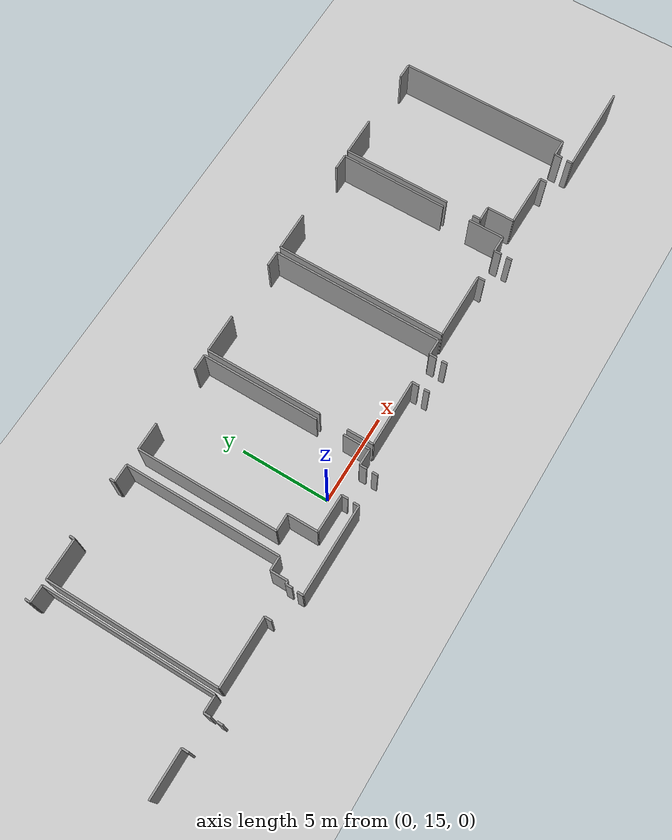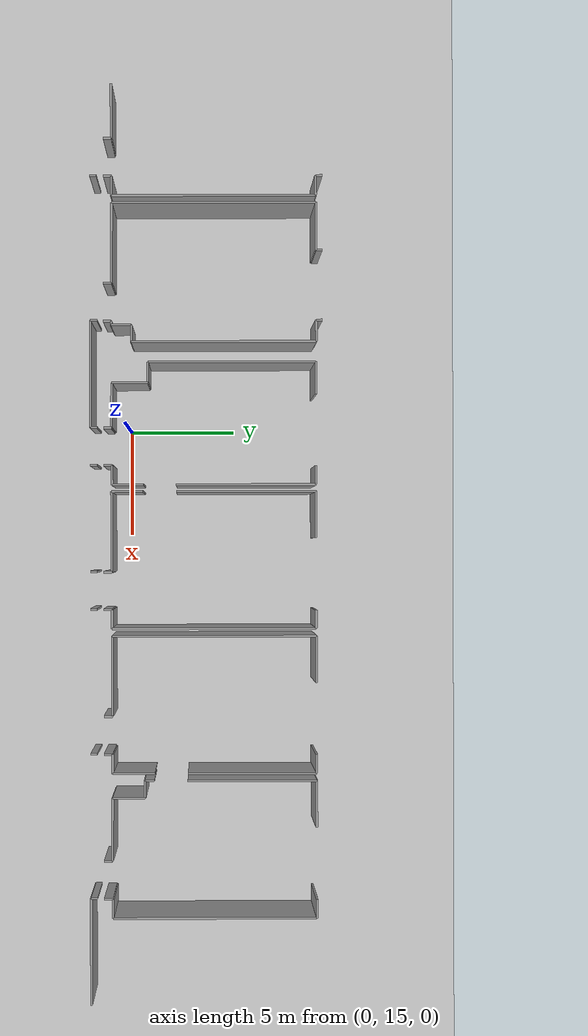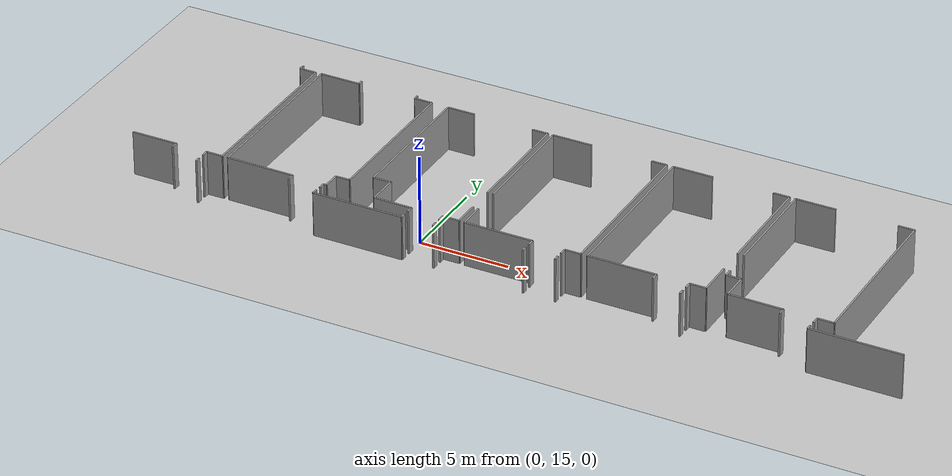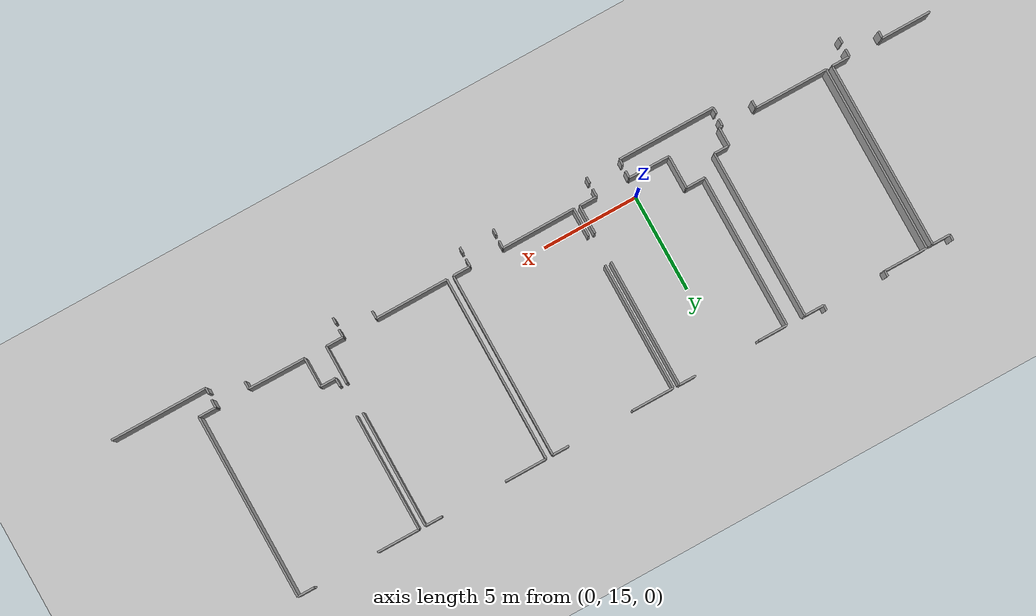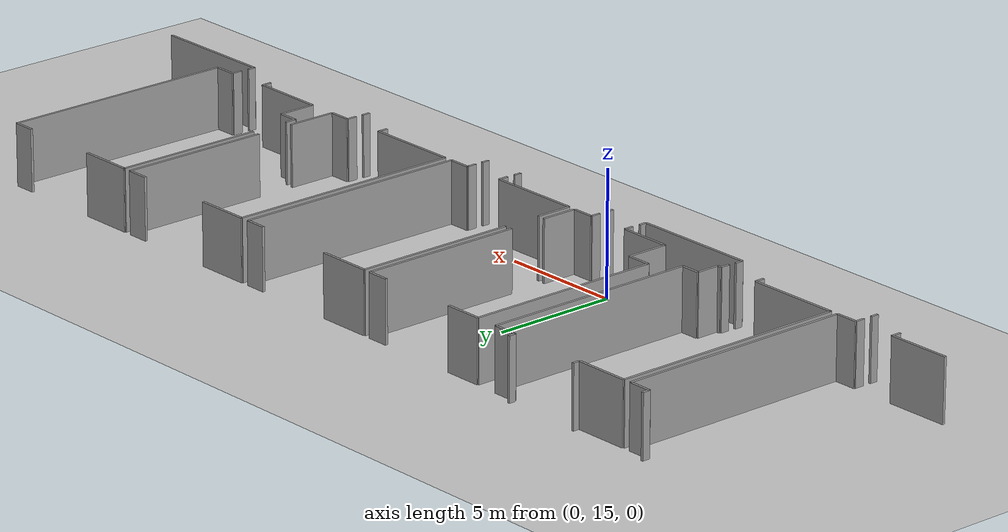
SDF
<sdf version="1.6">
 <world name="default">
  <model name="ground_plane">
   <static>1</static>
   <link name="link">
    <collision name="collision">
     <geometry><plane><normal>0 0 1</normal><size>100 100</size></plane></geometry>
     <surface><friction><ode><mu>100</mu><mu2>50</mu2></ode></friction></surface>
    </collision>
    <visual name="visual">
     <cast_shadows>0</cast_shadows>
     <geometry><plane><normal>0 0 1</normal><size>100 100</size></plane></geometry>
     <material>
      <script><uri>file://media/materials/scripts/gazebo.material</uri><name>Gazebo/Grey</name></script>
     </material>
    </visual>
   </link>
  </model>
  <model name="0510032197_A_40_1_105">
   <static>1</static>
   <link name="Wall_83">
    <collision name="Wall_83_Collision">
     <geometry><box><size>0.312917042667 0.1 2.5</size></box></geometry>
     <pose>0.156458521334 0 1.25 0 0 0</pose>
    </collision>
    <visual name="Wall_83_Visual">
     <pose>0.156458521334 0 1.25 0 0 0</pose>
     <geometry><box><size>0.312917042667 0.1 2.5</size></box></geometry>
     <material>
      <script><uri>file://media/materials/scripts/gazebo.material</uri><name>Gazebo/Grey</name></script>
      <ambient>1 1 1 1</ambient>
     </material>
    </visual>
    <pose>53.5810063676 -0.00724462690171 0 0 0 -1.57079632679</pose>
   </link>
   <link name="Wall_84">
    <collision name="Wall_84_Collision">
     <geometry><box><size>0.930743908794 0.1 2.5</size></box></geometry>
     <pose>0.465371954397 0 1.25 0 0 0</pose>
    </collision>
    <visual name="Wall_84_Visual">
     <pose>0.465371954397 0 1.25 0 0 0</pose>
     <geometry><box><size>0.930743908794 0.1 2.5</size></box></geometry>
     <material>
      <script><uri>file://media/materials/scripts/gazebo.material</uri><name>Gazebo/Grey</name></script>
      <ambient>1 1 1 1</ambient>
     </material>
    </visual>
    <pose>53.5810063676 -0.320161669569 0 0 0 0.0</pose>
   </link>
   <link name="Wall_85">
    <collision name="Wall_85_Collision">
     <geometry><box><size>9.64882624334 0.1 2.5</size></box></geometry>
     <pose>4.82441312167 0 1.25 0 0 0</pose>
    </collision>
    <visual name="Wall_85_Visual">
     <pose>4.82441312167 0 1.25 0 0 0</pose>
     <geometry><box><size>9.64882624334 0.1 2.5</size></box></geometry>
     <material>
      <script><uri>file://media/materials/scripts/gazebo.material</uri><name>Gazebo/Grey</name></script>
      <ambient>1 1 1 1</ambient>
     </material>
    </visual>
    <pose>54.5117502764 -0.320161669569 0 0 0 -1.57079632679</pose>
   </link>
   <link name="Wall_86">
    <collision name="Wall_86_Collision">
     <geometry><box><size>0.927312243419 0.1 2.5</size></box></geometry>
     <pose>0.46365612171 0 1.25 0 0 0</pose>
    </collision>
    <visual name="Wall_86_Visual">
     <pose>0.46365612171 0 1.25 0 0 0</pose>
     <geometry><box><size>0.927312243419 0.1 2.5</size></box></geometry>
     <material>
      <script><uri>file://media/materials/scripts/gazebo.material</uri><name>Gazebo/Grey</name></script>
      <ambient>1 1 1 1</ambient>
     </material>
    </visual>
    <pose>54.5117502764 -9.96898791291 0 0 0 3.14159265359</pose>
   </link>
   <link name="Wall_87">
    <collision name="Wall_87_Collision">
     <geometry><box><size>0.379135474523 0.1 2.5</size></box></geometry>
     <pose>0.189567737262 0 1.25 0 0 0</pose>
    </collision>
    <visual name="Wall_87_Visual">
     <pose>0.189567737262 0 1.25 0 0 0</pose>
     <geometry><box><size>0.379135474523 0.1 2.5</size></box></geometry>
     <material>
      <script><uri>file://media/materials/scripts/gazebo.material</uri><name>Gazebo/Grey</name></script>
      <ambient>1 1 1 1</ambient>
     </material>
    </visual>
    <pose>53.584438033 -9.96898791291 0 0 0 -1.57079632679</pose>
   </link>
   <link name="Wall_88">
    <collision name="Wall_88_Collision">
     <geometry><box><size>0.372780538644 0.1 2.5</size></box></geometry>
     <pose>0.186390269322 0 1.25 0 0 0</pose>
    </collision>
    <visual name="Wall_88_Visual">
     <pose>0.186390269322 0 1.25 0 0 0</pose>
     <geometry><box><size>0.372780538644 0.1 2.5</size></box></geometry>
     <material>
      <script><uri>file://media/materials/scripts/gazebo.material</uri><name>Gazebo/Grey</name></script>
      <ambient>1 1 1 1</ambient>
     </material>
    </visual>
    <pose>51.8025140126 -10.3481233874 0 0 0 1.57079632679</pose>
   </link>
   <link name="Wall_89">
    <collision name="Wall_89_Collision">
     <geometry><box><size>2.58048954794 0.1 2.5</size></box></geometry>
     <pose>1.29024477397 0 1.25 0 0 0</pose>
    </collision>
    <visual name="Wall_89_Visual">
     <pose>1.29024477397 0 1.25 0 0 0</pose>
     <geometry><box><size>2.58048954794 0.1 2.5</size></box></geometry>
     <material>
      <script><uri>file://media/materials/scripts/gazebo.material</uri><name>Gazebo/Grey</name></script>
      <ambient>1 1 1 1</ambient>
     </material>
    </visual>
    <pose>51.8025140126 -9.97534284879 0 0 0 -3.13977026483</pose>
   </link>
   <link name="Wall_90">
    <collision name="Wall_90_Collision">
     <geometry><box><size>9.65848574588 0.1 2.5</size></box></geometry>
     <pose>4.82924287294 0 1.25 0 0 0</pose>
    </collision>
    <visual name="Wall_90_Visual">
     <pose>4.82924287294 0 1.25 0 0 0</pose>
     <geometry><box><size>9.65848574588 0.1 2.5</size></box></geometry>
     <material>
      <script><uri>file://media/materials/scripts/gazebo.material</uri><name>Gazebo/Grey</name></script>
      <ambient>1 1 1 1</ambient>
     </material>
    </visual>
    <pose>54.8403004614 -9.96326847062 0 0 0 1.57079632679</pose>
   </link>
   <link name="Wall_91">
    <collision name="Wall_91_Collision">
     <geometry><box><size>2.25346026259 0.1 2.5</size></box></geometry>
     <pose>1.12673013129 0 1.25 0 0 0</pose>
    </collision>
    <visual name="Wall_91_Visual">
     <pose>1.12673013129 0 1.25 0 0 0</pose>
     <geometry><box><size>2.25346026259 0.1 2.5</size></box></geometry>
     <material>
      <script><uri>file://media/materials/scripts/gazebo.material</uri><name>Gazebo/Grey</name></script>
      <ambient>1 1 1 1</ambient>
     </material>
    </visual>
    <pose>54.8403004614 -0.304782724742 0 0 0 0.0</pose>
   </link>
   <link name="Wall_92">
    <collision name="Wall_92_Collision">
     <geometry><box><size>0.296140011947 0.1 2.5</size></box></geometry>
     <pose>0.148070005974 0 1.25 0 0 0</pose>
    </collision>
    <visual name="Wall_92_Visual">
     <pose>0.148070005974 0 1.25 0 0 0</pose>
     <geometry><box><size>0.296140011947 0.1 2.5</size></box></geometry>
     <material>
      <script><uri>file://media/materials/scripts/gazebo.material</uri><name>Gazebo/Grey</name></script>
      <ambient>1 1 1 1</ambient>
     </material>
    </visual>
    <pose>57.093760724 -0.304782724742 0 0 0 1.57079632679</pose>
   </link>
   <link name="Wall_93">
    <collision name="Wall_93_Collision">
     <geometry><box><size>0.286607608129 0.1 2.5</size></box></geometry>
     <pose>0.143303804065 0 1.25 0 0 0</pose>
    </collision>
    <visual name="Wall_93_Visual">
     <pose>0.143303804065 0 1.25 0 0 0</pose>
     <geometry><box><size>0.286607608129 0.1 2.5</size></box></geometry>
     <material>
      <script><uri>file://media/materials/scripts/gazebo.material</uri><name>Gazebo/Grey</name></script>
      <ambient>1 1 1 1</ambient>
     </material>
    </visual>
    <pose>60.3992170719 -0.00864271279503 0 0 0 -1.57079632679</pose>
   </link>
   <link name="Wall_94">
    <collision name="Wall_94_Collision">
     <geometry><box><size>1.00547795473 0.1 2.5</size></box></geometry>
     <pose>0.502738977364 0 1.25 0 0 0</pose>
    </collision>
    <visual name="Wall_94_Visual">
     <pose>0.502738977364 0 1.25 0 0 0</pose>
     <geometry><box><size>1.00547795473 0.1 2.5</size></box></geometry>
     <material>
      <script><uri>file://media/materials/scripts/gazebo.material</uri><name>Gazebo/Grey</name></script>
      <ambient>1 1 1 1</ambient>
     </material>
    </visual>
    <pose>60.3992170719 -0.295250320924 0 0 0 0.0</pose>
   </link>
   <link name="Wall_95">
    <collision name="Wall_95_Collision">
     <geometry><box><size>8.7488402242 0.1 2.5</size></box></geometry>
     <pose>4.3744201121 0 1.25 0 0 0</pose>
    </collision>
    <visual name="Wall_95_Visual">
     <pose>4.3744201121 0 1.25 0 0 0</pose>
     <geometry><box><size>8.7488402242 0.1 2.5</size></box></geometry>
     <material>
      <script><uri>file://media/materials/scripts/gazebo.material</uri><name>Gazebo/Grey</name></script>
      <ambient>1 1 1 1</ambient>
     </material>
    </visual>
    <pose>61.4046950266 -0.295250320924 0 0 0 -1.57079632679</pose>
   </link>
   <link name="Wall_96">
    <collision name="Wall_96_Collision">
     <geometry><box><size>0.792079207921 0.1 2.5</size></box></geometry>
     <pose>0.39603960396 0 1.25 0 0 0</pose>
    </collision>
    <visual name="Wall_96_Visual">
     <pose>0.39603960396 0 1.25 0 0 0</pose>
     <geometry><box><size>0.792079207921 0.1 2.5</size></box></geometry>
     <material>
      <script><uri>file://media/materials/scripts/gazebo.material</uri><name>Gazebo/Grey</name></script>
      <ambient>1 1 1 1</ambient>
     </material>
    </visual>
    <pose>61.4046950266 -9.04409054513 0 0 0 3.14159265359</pose>
   </link>
   <link name="Wall_97">
    <collision name="Wall_97_Collision">
     <geometry><box><size>0.952731986934 0.1 2.5</size></box></geometry>
     <pose>0.476365993467 0 1.25 0 0 0</pose>
    </collision>
    <visual name="Wall_97_Visual">
     <pose>0.476365993467 0 1.25 0 0 0</pose>
     <geometry><box><size>0.952731986934 0.1 2.5</size></box></geometry>
     <material>
      <script><uri>file://media/materials/scripts/gazebo.material</uri><name>Gazebo/Grey</name></script>
      <ambient>1 1 1 1</ambient>
     </material>
    </visual>
    <pose>60.6126158187 -9.04409054513 0 0 0 -1.57079632679</pose>
   </link>
   <link name="Wall_98">
    <collision name="Wall_98_Collision">
     <geometry><box><size>0.17552332897 0.1 2.5</size></box></geometry>
     <pose>0.0877616644848 0 1.25 0 0 0</pose>
    </collision>
    <visual name="Wall_98_Visual">
     <pose>0.0877616644848 0 1.25 0 0 0</pose>
     <geometry><box><size>0.17552332897 0.1 2.5</size></box></geometry>
     <material>
      <script><uri>file://media/materials/scripts/gazebo.material</uri><name>Gazebo/Grey</name></script>
      <ambient>1 1 1 1</ambient>
     </material>
    </visual>
    <pose>60.6126158187 -9.99682253206 0 0 0 3.14159265359</pose>
   </link>
   <link name="Wall_99">
    <collision name="Wall_99_Collision">
     <geometry><box><size>0.367442392506 0.1 2.5</size></box></geometry>
     <pose>0.183721196253 0 1.25 0 0 0</pose>
    </collision>
    <visual name="Wall_99_Visual">
     <pose>0.183721196253 0 1.25 0 0 0</pose>
     <geometry><box><size>0.367442392506 0.1 2.5</size></box></geometry>
     <material>
      <script><uri>file://media/materials/scripts/gazebo.material</uri><name>Gazebo/Grey</name></script>
      <ambient>1 1 1 1</ambient>
     </material>
    </visual>
    <pose>60.4370924897 -9.99682253206 0 0 0 -1.57079632679</pose>
   </link>
   <link name="Wall_100">
    <collision name="Wall_100_Collision">
     <geometry><box><size>0.388922075776 0.1 2.5</size></box></geometry>
     <pose>0.194461037888 0 1.25 0 0 0</pose>
    </collision>
    <visual name="Wall_100_Visual">
     <pose>0.194461037888 0 1.25 0 0 0</pose>
     <geometry><box><size>0.388922075776 0.1 2.5</size></box></geometry>
     <material>
      <script><uri>file://media/materials/scripts/gazebo.material</uri><name>Gazebo/Grey</name></script>
      <ambient>1 1 1 1</ambient>
     </material>
    </visual>
    <pose>58.6396624258 -10.3642649246 0 0 0 1.57079632679</pose>
   </link>
   <link name="Wall_101">
    <collision name="Wall_101_Collision">
     <geometry><box><size>3.79938115059 0.1 2.5</size></box></geometry>
     <pose>1.89969057529 0 1.25 0 0 0</pose>
    </collision>
    <visual name="Wall_101_Visual">
     <pose>1.89969057529 0 1.25 0 0 0</pose>
     <geometry><box><size>3.79938115059 0.1 2.5</size></box></geometry>
     <material>
      <script><uri>file://media/materials/scripts/gazebo.material</uri><name>Gazebo/Grey</name></script>
      <ambient>1 1 1 1</ambient>
     </material>
    </visual>
    <pose>58.6396624258 -9.97534284879 0 0 0 3.13841466275</pose>
   </link>
   <link name="Wall_102">
    <collision name="Wall_102_Collision">
     <geometry><box><size>1.70058084114 0.1 2.5</size></box></geometry>
     <pose>0.85029042057 0 1.25 0 0 0</pose>
    </collision>
    <visual name="Wall_102_Visual">
     <pose>0.85029042057 0 1.25 0 0 0</pose>
     <geometry><box><size>1.70058084114 0.1 2.5</size></box></geometry>
     <material>
      <script><uri>file://media/materials/scripts/gazebo.material</uri><name>Gazebo/Grey</name></script>
      <ambient>1 1 1 1</ambient>
     </material>
    </visual>
    <pose>63.3467634312 -9.97025890009 0 0 0 1.57079632679</pose>
   </link>
   <link name="Wall_103">
    <collision name="Wall_103_Collision">
     <geometry><box><size>0.981329198388 0.1 2.5</size></box></geometry>
     <pose>0.490664599194 0 1.25 0 0 0</pose>
    </collision>
    <visual name="Wall_103_Visual">
     <pose>0.490664599194 0 1.25 0 0 0</pose>
     <geometry><box><size>0.981329198388 0.1 2.5</size></box></geometry>
     <material>
      <script><uri>file://media/materials/scripts/gazebo.material</uri><name>Gazebo/Grey</name></script>
      <ambient>1 1 1 1</ambient>
     </material>
    </visual>
    <pose>63.3467634312 -8.26967805895 0 0 0 3.14159265359</pose>
   </link>
   <link name="Wall_104">
    <collision name="Wall_104_Collision">
     <geometry><box><size>7.94989768553 0.1 2.5</size></box></geometry>
     <pose>3.97494884277 0 1.25 0 0 0</pose>
    </collision>
    <visual name="Wall_104_Visual">
     <pose>3.97494884277 0 1.25 0 0 0</pose>
     <geometry><box><size>7.94989768553 0.1 2.5</size></box></geometry>
     <material>
      <script><uri>file://media/materials/scripts/gazebo.material</uri><name>Gazebo/Grey</name></script>
      <ambient>1 1 1 1</ambient>
     </material>
    </visual>
    <pose>62.3654342328 -8.26967805895 0 0 0 1.57079632679</pose>
   </link>
   <link name="Wall_105">
    <collision name="Wall_105_Collision">
     <geometry><box><size>1.53357312625 0.1 2.5</size></box></geometry>
     <pose>0.766786563124 0 1.25 0 0 0</pose>
    </collision>
    <visual name="Wall_105_Visual">
     <pose>0.766786563124 0 1.25 0 0 0</pose>
     <geometry><box><size>1.53357312625 0.1 2.5</size></box></geometry>
     <material>
      <script><uri>file://media/materials/scripts/gazebo.material</uri><name>Gazebo/Grey</name></script>
      <ambient>1 1 1 1</ambient>
     </material>
    </visual>
    <pose>62.3654342328 -0.319780373416 0 0 0 0.0</pose>
   </link>
   <link name="Wall_106">
    <collision name="Wall_106_Collision">
     <geometry><box><size>0.890962010193 0.1 2.5</size></box></geometry>
     <pose>0.445481005097 0 1.25 0 0 0</pose>
    </collision>
    <visual name="Wall_106_Visual">
     <pose>0.445481005097 0 1.25 0 0 0</pose>
     <geometry><box><size>0.890962010193 0.1 2.5</size></box></geometry>
     <material>
      <script><uri>file://media/materials/scripts/gazebo.material</uri><name>Gazebo/Grey</name></script>
      <ambient>1 1 1 1</ambient>
     </material>
    </visual>
    <pose>67.2715718298 -0.319780373416 0 0 0 0.0</pose>
   </link>
   <link name="Wall_107">
    <collision name="Wall_107_Collision">
     <geometry><box><size>6.62019090227 0.1 2.5</size></box></geometry>
     <pose>3.31009545114 0 1.25 0 0 0</pose>
    </collision>
    <visual name="Wall_107_Visual">
     <pose>3.31009545114 0 1.25 0 0 0</pose>
     <geometry><box><size>6.62019090227 0.1 2.5</size></box></geometry>
     <material>
      <script><uri>file://media/materials/scripts/gazebo.material</uri><name>Gazebo/Grey</name></script>
      <ambient>1 1 1 1</ambient>
     </material>
    </visual>
    <pose>68.16253384 -0.319780373416 0 0 0 -1.57079632679</pose>
   </link>
   <link name="Wall_108">
    <collision name="Wall_108_Collision">
     <geometry><box><size>1.48120845461 0.1 2.5</size></box></geometry>
     <pose>0.740604227303 0 1.25 0 0 0</pose>
    </collision>
    <visual name="Wall_108_Visual">
     <pose>0.740604227303 0 1.25 0 0 0</pose>
     <geometry><box><size>1.48120845461 0.1 2.5</size></box></geometry>
     <material>
      <script><uri>file://media/materials/scripts/gazebo.material</uri><name>Gazebo/Grey</name></script>
      <ambient>1 1 1 1</ambient>
     </material>
    </visual>
    <pose>68.16253384 -8.48015353525 0 0 0 -1.57079632679</pose>
   </link>
   <link name="Wall_109">
    <collision name="Wall_109_Collision">
     <geometry><box><size>0.920067616518 0.1 2.5</size></box></geometry>
     <pose>0.460033808259 0 1.25 0 0 0</pose>
    </collision>
    <visual name="Wall_109_Visual">
     <pose>0.460033808259 0 1.25 0 0 0</pose>
     <geometry><box><size>0.920067616518 0.1 2.5</size></box></geometry>
     <material>
      <script><uri>file://media/materials/scripts/gazebo.material</uri><name>Gazebo/Grey</name></script>
      <ambient>1 1 1 1</ambient>
     </material>
    </visual>
    <pose>68.16253384 -9.96136198986 0 0 0 3.14159265359</pose>
   </link>
   <link name="Wall_110">
    <collision name="Wall_110_Collision">
     <geometry><box><size>0.396547998831 0.1 2.5</size></box></geometry>
     <pose>0.198273999415 0 1.25 0 0 0</pose>
    </collision>
    <visual name="Wall_110_Visual">
     <pose>0.198273999415 0 1.25 0 0 0</pose>
     <geometry><box><size>0.396547998831 0.1 2.5</size></box></geometry>
     <material>
      <script><uri>file://media/materials/scripts/gazebo.material</uri><name>Gazebo/Grey</name></script>
      <ambient>1 1 1 1</ambient>
     </material>
    </visual>
    <pose>67.2424662235 -9.96136198986 0 0 0 -1.57079632679</pose>
   </link>
   <link name="Wall_111">
    <collision name="Wall_111_Collision">
     <geometry><box><size>0.367823688659 0.1 2.5</size></box></geometry>
     <pose>0.183911844329 0 1.25 0 0 0</pose>
    </collision>
    <visual name="Wall_111_Visual">
     <pose>0.183911844329 0 1.25 0 0 0</pose>
     <geometry><box><size>0.367823688659 0.1 2.5</size></box></geometry>
     <material>
      <script><uri>file://media/materials/scripts/gazebo.material</uri><name>Gazebo/Grey</name></script>
      <ambient>1 1 1 1</ambient>
     </material>
    </visual>
    <pose>65.4755398518 -10.3579099887 0 0 0 1.57079632679</pose>
   </link>
   <link name="Wall_112">
    <collision name="Wall_112_Collision">
     <geometry><box><size>2.12886875473 0.1 2.5</size></box></geometry>
     <pose>1.06443437737 0 1.25 0 0 0</pose>
    </collision>
    <visual name="Wall_112_Visual">
     <pose>1.06443437737 0 1.25 0 0 0</pose>
     <geometry><box><size>2.12886875473 0.1 2.5</size></box></geometry>
     <material>
      <script><uri>file://media/materials/scripts/gazebo.material</uri><name>Gazebo/Grey</name></script>
      <ambient>1 1 1 1</ambient>
     </material>
    </visual>
    <pose>65.4755398518 -9.99008630003 0 0 0 3.13227893401</pose>
   </link>
   <link name="Wall_113">
    <collision name="Wall_113_Collision">
     <geometry><box><size>1.47993746743 0.1 2.5</size></box></geometry>
     <pose>0.739968733715 0 1.25 0 0 0</pose>
    </collision>
    <visual name="Wall_113_Visual">
     <pose>0.739968733715 0 1.25 0 0 0</pose>
     <geometry><box><size>1.47993746743 0.1 2.5</size></box></geometry>
     <material>
      <script><uri>file://media/materials/scripts/gazebo.material</uri><name>Gazebo/Grey</name></script>
      <ambient>1 1 1 1</ambient>
     </material>
    </visual>
    <pose>68.4790096468 -9.9862733385 0 0 0 1.57079632679</pose>
   </link>
   <link name="Wall_114">
    <collision name="Wall_114_Collision">
     <geometry><box><size>6.60570164847 0.1 2.5</size></box></geometry>
     <pose>3.30285082424 0 1.25 0 0 0</pose>
    </collision>
    <visual name="Wall_114_Visual">
     <pose>3.30285082424 0 1.25 0 0 0</pose>
     <geometry><box><size>6.60570164847 0.1 2.5</size></box></geometry>
     <material>
      <script><uri>file://media/materials/scripts/gazebo.material</uri><name>Gazebo/Grey</name></script>
      <ambient>1 1 1 1</ambient>
     </material>
    </visual>
    <pose>68.4790096468 -6.93272664879 0 0 0 1.57079632679</pose>
   </link>
   <link name="Wall_115">
    <collision name="Wall_115_Collision">
     <geometry><box><size>2.20732342811 0.1 2.5</size></box></geometry>
     <pose>1.10366171405 0 1.25 0 0 0</pose>
    </collision>
    <visual name="Wall_115_Visual">
     <pose>1.10366171405 0 1.25 0 0 0</pose>
     <geometry><box><size>2.20732342811 0.1 2.5</size></box></geometry>
     <material>
      <script><uri>file://media/materials/scripts/gazebo.material</uri><name>Gazebo/Grey</name></script>
      <ambient>1 1 1 1</ambient>
     </material>
    </visual>
    <pose>68.4790096468 -0.327025000318 0 0 0 0.0</pose>
   </link>
   <link name="Wall_116">
    <collision name="Wall_116_Collision">
     <geometry><box><size>0.864779674373 0.1 2.5</size></box></geometry>
     <pose>0.432389837187 0 1.25 0 0 0</pose>
    </collision>
    <visual name="Wall_116_Visual">
     <pose>0.432389837187 0 1.25 0 0 0</pose>
     <geometry><box><size>0.864779674373 0.1 2.5</size></box></geometry>
     <material>
      <script><uri>file://media/materials/scripts/gazebo.material</uri><name>Gazebo/Grey</name></script>
      <ambient>1 1 1 1</ambient>
     </material>
    </visual>
    <pose>74.1018569123 -0.327025000318 0 0 0 0.0</pose>
   </link>
   <link name="Wall_117">
    <collision name="Wall_117_Collision">
     <geometry><box><size>9.64323389977 0.1 2.5</size></box></geometry>
     <pose>4.82161694988 0 1.25 0 0 0</pose>
    </collision>
    <visual name="Wall_117_Visual">
     <pose>4.82161694988 0 1.25 0 0 0</pose>
     <geometry><box><size>9.64323389977 0.1 2.5</size></box></geometry>
     <material>
      <script><uri>file://media/materials/scripts/gazebo.material</uri><name>Gazebo/Grey</name></script>
      <ambient>1 1 1 1</ambient>
     </material>
    </visual>
    <pose>74.9666365866 -0.327025000318 0 0 0 -1.57079632679</pose>
   </link>
   <link name="Wall_118">
    <collision name="Wall_118_Collision">
     <geometry><box><size>0.901129907599 0.1 2.5</size></box></geometry>
     <pose>0.4505649538 0 1.25 0 0 0</pose>
    </collision>
    <visual name="Wall_118_Visual">
     <pose>0.4505649538 0 1.25 0 0 0</pose>
     <geometry><box><size>0.901129907599 0.1 2.5</size></box></geometry>
     <material>
      <script><uri>file://media/materials/scripts/gazebo.material</uri><name>Gazebo/Grey</name></script>
      <ambient>1 1 1 1</ambient>
     </material>
    </visual>
    <pose>74.9666365866 -9.97025890009 0 0 0 3.14159265359</pose>
   </link>
   <link name="Wall_119">
    <collision name="Wall_119_Collision">
     <geometry><box><size>0.399598368052 0.1 2.5</size></box></geometry>
     <pose>0.199799184026 0 1.25 0 0 0</pose>
    </collision>
    <visual name="Wall_119_Visual">
     <pose>0.199799184026 0 1.25 0 0 0</pose>
     <geometry><box><size>0.399598368052 0.1 2.5</size></box></geometry>
     <material>
      <script><uri>file://media/materials/scripts/gazebo.material</uri><name>Gazebo/Grey</name></script>
      <ambient>1 1 1 1</ambient>
     </material>
    </visual>
    <pose>74.065506679 -9.97025890009 0 0 0 -1.57079632679</pose>
   </link>
   <link name="Wall_120">
    <collision name="Wall_120_Collision">
     <geometry><box><size>0.396802196266 0.1 2.5</size></box></geometry>
     <pose>0.198401098133 0 1.25 0 0 0</pose>
    </collision>
    <visual name="Wall_120_Visual">
     <pose>0.198401098133 0 1.25 0 0 0</pose>
     <geometry><box><size>0.396802196266 0.1 2.5</size></box></geometry>
     <material>
      <script><uri>file://media/materials/scripts/gazebo.material</uri><name>Gazebo/Grey</name></script>
      <ambient>1 1 1 1</ambient>
     </material>
    </visual>
    <pose>72.2891750022 -10.3698572681 0 0 0 1.57079632679</pose>
   </link>
   <link name="Wall_121">
    <collision name="Wall_121_Collision">
     <geometry><box><size>3.81018828384 0.1 2.5</size></box></geometry>
     <pose>1.90509414192 0 1.25 0 0 0</pose>
    </collision>
    <visual name="Wall_121_Visual">
     <pose>1.90509414192 0 1.25 0 0 0</pose>
     <geometry><box><size>3.81018828384 0.1 2.5</size></box></geometry>
     <material>
      <script><uri>file://media/materials/scripts/gazebo.material</uri><name>Gazebo/Grey</name></script>
      <ambient>1 1 1 1</ambient>
     </material>
    </visual>
    <pose>72.2891750022 -9.97305507187 0 0 0 -3.13812345675</pose>
   </link>
   <link name="Wall_122">
    <collision name="Wall_122_Collision">
     <geometry><box><size>9.64730105873 0.1 2.5</size></box></geometry>
     <pose>4.82365052937 0 1.25 0 0 0</pose>
    </collision>
    <visual name="Wall_122_Visual">
     <pose>4.82365052937 0 1.25 0 0 0</pose>
     <geometry><box><size>9.64730105873 0.1 2.5</size></box></geometry>
     <material>
      <script><uri>file://media/materials/scripts/gazebo.material</uri><name>Gazebo/Grey</name></script>
      <ambient>1 1 1 1</ambient>
     </material>
    </visual>
    <pose>75.3216233048 -9.96708143215 0 0 0 1.57079632679</pose>
   </link>
   <link name="Wall_123">
    <collision name="Wall_123_Collision">
     <geometry><box><size>2.2057982435 0.1 2.5</size></box></geometry>
     <pose>1.10289912175 0 1.25 0 0 0</pose>
    </collision>
    <visual name="Wall_123_Visual">
     <pose>1.10289912175 0 1.25 0 0 0</pose>
     <geometry><box><size>2.2057982435 0.1 2.5</size></box></geometry>
     <material>
      <script><uri>file://media/materials/scripts/gazebo.material</uri><name>Gazebo/Grey</name></script>
      <ambient>1 1 1 1</ambient>
     </material>
    </visual>
    <pose>75.3216233048 -0.319780373416 0 0 0 0.0</pose>
   </link>
   <link name="Wall_124">
    <collision name="Wall_124_Collision">
     <geometry><box><size>0.90163830247 0.1 2.5</size></box></geometry>
     <pose>0.450819151235 0 1.25 0 0 0</pose>
    </collision>
    <visual name="Wall_124_Visual">
     <pose>0.450819151235 0 1.25 0 0 0</pose>
     <geometry><box><size>0.90163830247 0.1 2.5</size></box></geometry>
     <material>
      <script><uri>file://media/materials/scripts/gazebo.material</uri><name>Gazebo/Grey</name></script>
      <ambient>1 1 1 1</ambient>
     </material>
    </visual>
    <pose>80.903671882 -0.319780373416 0 0 0 0.0</pose>
   </link>
   <link name="Wall_125">
    <collision name="Wall_125_Collision">
     <geometry><box><size>6.07239542953 0.1 2.5</size></box></geometry>
     <pose>3.03619771477 0 1.25 0 0 0</pose>
    </collision>
    <visual name="Wall_125_Visual">
     <pose>3.03619771477 0 1.25 0 0 0</pose>
     <geometry><box><size>6.07239542953 0.1 2.5</size></box></geometry>
     <material>
      <script><uri>file://media/materials/scripts/gazebo.material</uri><name>Gazebo/Grey</name></script>
      <ambient>1 1 1 1</ambient>
     </material>
    </visual>
    <pose>81.8053101844 -0.319780373416 0 0 0 -1.57079632679</pose>
   </link>
   <link name="Wall_126">
    <collision name="Wall_126_Collision">
     <geometry><box><size>1.9960853595 0.1 2.5</size></box></geometry>
     <pose>0.998042679749 0 1.25 0 0 0</pose>
    </collision>
    <visual name="Wall_126_Visual">
     <pose>0.998042679749 0 1.25 0 0 0</pose>
     <geometry><box><size>1.9960853595 0.1 2.5</size></box></geometry>
     <material>
      <script><uri>file://media/materials/scripts/gazebo.material</uri><name>Gazebo/Grey</name></script>
      <ambient>1 1 1 1</ambient>
     </material>
    </visual>
    <pose>81.8053101844 -7.95955718807 0 0 0 -1.57079632679</pose>
   </link>
   <link name="Wall_127">
    <collision name="Wall_127_Collision">
     <geometry><box><size>0.90163830247 0.1 2.5</size></box></geometry>
     <pose>0.450819151235 0 1.25 0 0 0</pose>
    </collision>
    <visual name="Wall_127_Visual">
     <pose>0.450819151235 0 1.25 0 0 0</pose>
     <geometry><box><size>0.90163830247 0.1 2.5</size></box></geometry>
     <material>
      <script><uri>file://media/materials/scripts/gazebo.material</uri><name>Gazebo/Grey</name></script>
      <ambient>1 1 1 1</ambient>
     </material>
    </visual>
    <pose>81.8053101844 -9.95564254757 0 0 0 3.14159265359</pose>
   </link>
   <link name="Wall_128">
    <collision name="Wall_128_Collision">
     <geometry><box><size>0.406970093672 0.1 2.5</size></box></geometry>
     <pose>0.203485046836 0 1.25 0 0 0</pose>
    </collision>
    <visual name="Wall_128_Visual">
     <pose>0.203485046836 0 1.25 0 0 0</pose>
     <geometry><box><size>0.406970093672 0.1 2.5</size></box></geometry>
     <material>
      <script><uri>file://media/materials/scripts/gazebo.material</uri><name>Gazebo/Grey</name></script>
      <ambient>1 1 1 1</ambient>
     </material>
    </visual>
    <pose>80.903671882 -9.95564254757 0 0 0 -1.57079632679</pose>
   </link>
   <link name="Wall_129">
    <collision name="Wall_129_Collision">
     <geometry><box><size>0.399598368052 0.1 2.5</size></box></geometry>
     <pose>0.199799184026 0 1.25 0 0 0</pose>
    </collision>
    <visual name="Wall_129_Visual">
     <pose>0.199799184026 0 1.25 0 0 0</pose>
     <geometry><box><size>0.399598368052 0.1 2.5</size></box></geometry>
     <material>
      <script><uri>file://media/materials/scripts/gazebo.material</uri><name>Gazebo/Grey</name></script>
      <ambient>1 1 1 1</ambient>
     </material>
    </visual>
    <pose>79.1086566937 -10.3626126412 0 0 0 1.57079632679</pose>
   </link>
   <link name="Wall_130">
    <collision name="Wall_130_Collision">
     <geometry><box><size>3.78703557284 0.1 2.5</size></box></geometry>
     <pose>1.89351778642 0 1.25 0 0 0</pose>
    </collision>
    <visual name="Wall_130_Visual">
     <pose>1.89351778642 0 1.25 0 0 0</pose>
     <geometry><box><size>3.78703557284 0.1 2.5</size></box></geometry>
     <material>
      <script><uri>file://media/materials/scripts/gazebo.material</uri><name>Gazebo/Grey</name></script>
      <ambient>1 1 1 1</ambient>
     </material>
    </visual>
    <pose>79.1086566937 -9.96301427319 0 0 0 -3.14051868434</pose>
   </link>
   <link name="Wall_131">
    <collision name="Wall_131_Collision">
     <geometry><box><size>1.52582010448 0.1 2.5</size></box></geometry>
     <pose>0.762910052238 0 1.25 0 0 0</pose>
    </collision>
    <visual name="Wall_131_Visual">
     <pose>0.762910052238 0 1.25 0 0 0</pose>
     <geometry><box><size>1.52582010448 0.1 2.5</size></box></geometry>
     <material>
      <script><uri>file://media/materials/scripts/gazebo.material</uri><name>Gazebo/Grey</name></script>
      <ambient>1 1 1 1</ambient>
     </material>
    </visual>
    <pose>82.961145922 -9.95551544885 0 0 0 1.57079632679</pose>
   </link>
   <link name="Wall_132">
    <collision name="Wall_132_Collision">
     <geometry><box><size>0.814829878367 0.1 2.5</size></box></geometry>
     <pose>0.407414939183 0 1.25 0 0 0</pose>
    </collision>
    <visual name="Wall_132_Visual">
     <pose>0.407414939183 0 1.25 0 0 0</pose>
     <geometry><box><size>0.814829878367 0.1 2.5</size></box></geometry>
     <material>
      <script><uri>file://media/materials/scripts/gazebo.material</uri><name>Gazebo/Grey</name></script>
      <ambient>1 1 1 1</ambient>
     </material>
    </visual>
    <pose>82.961145922 -8.42969534437 0 0 0 3.14159265359</pose>
   </link>
   <link name="Wall_133">
    <collision name="Wall_133_Collision">
     <geometry><box><size>0.443320326898 0.1 2.5</size></box></geometry>
     <pose>0.221660163449 0 1.25 0 0 0</pose>
    </collision>
    <visual name="Wall_133_Visual">
     <pose>0.221660163449 0 1.25 0 0 0</pose>
     <geometry><box><size>0.443320326898 0.1 2.5</size></box></geometry>
     <material>
      <script><uri>file://media/materials/scripts/gazebo.material</uri><name>Gazebo/Grey</name></script>
      <ambient>1 1 1 1</ambient>
     </material>
    </visual>
    <pose>82.1463160437 -8.42969534437 0 0 0 1.57079632679</pose>
   </link>
   <link name="Wall_134">
    <collision name="Wall_134_Collision">
     <geometry><box><size>6.09184153332 0.1 2.5</size></box></geometry>
     <pose>3.04592076666 0 1.25 0 0 0</pose>
    </collision>
    <visual name="Wall_134_Visual">
     <pose>3.04592076666 0 1.25 0 0 0</pose>
     <geometry><box><size>6.09184153332 0.1 2.5</size></box></geometry>
     <material>
      <script><uri>file://media/materials/scripts/gazebo.material</uri><name>Gazebo/Grey</name></script>
      <ambient>1 1 1 1</ambient>
     </material>
    </visual>
    <pose>82.1463160437 -6.41162190673 0 0 0 1.57079632679</pose>
   </link>
   <link name="Wall_135">
    <collision name="Wall_135_Collision">
     <geometry><box><size>2.21189898194 0.1 2.5</size></box></geometry>
     <pose>1.10594949097 0 1.25 0 0 0</pose>
    </collision>
    <visual name="Wall_135_Visual">
     <pose>1.10594949097 0 1.25 0 0 0</pose>
     <geometry><box><size>2.21189898194 0.1 2.5</size></box></geometry>
     <material>
      <script><uri>file://media/materials/scripts/gazebo.material</uri><name>Gazebo/Grey</name></script>
      <ambient>1 1 1 1</ambient>
     </material>
    </visual>
    <pose>82.1463160437 -0.319780373416 0 0 0 0.0</pose>
   </link>
   <link name="Wall_136">
    <collision name="Wall_136_Collision">
     <geometry><box><size>0.890962010193 0.1 2.5</size></box></geometry>
     <pose>0.445481005097 0 1.25 0 0 0</pose>
    </collision>
    <visual name="Wall_136_Visual">
     <pose>0.445481005097 0 1.25 0 0 0</pose>
     <geometry><box><size>0.890962010193 0.1 2.5</size></box></geometry>
     <material>
      <script><uri>file://media/materials/scripts/gazebo.material</uri><name>Gazebo/Grey</name></script>
      <ambient>1 1 1 1</ambient>
     </material>
    </visual>
    <pose>87.7452687502 -0.319780373416 0 0 0 0.0</pose>
   </link>
   <link name="Wall_137">
    <collision name="Wall_137_Collision">
     <geometry><box><size>9.63026983058 0.1 2.5</size></box></geometry>
     <pose>4.81513491529 0 1.25 0 0 0</pose>
    </collision>
    <visual name="Wall_137_Visual">
     <pose>4.81513491529 0 1.25 0 0 0</pose>
     <geometry><box><size>9.63026983058 0.1 2.5</size></box></geometry>
     <material>
      <script><uri>file://media/materials/scripts/gazebo.material</uri><name>Gazebo/Grey</name></script>
      <ambient>1 1 1 1</ambient>
     </material>
    </visual>
    <pose>88.6362307604 -0.319780373416 0 0 0 -1.57079632679</pose>
   </link>
   <link name="Wall_138">
    <collision name="Wall_138_Collision">
     <geometry><box><size>0.903544783233 0.1 2.5</size></box></geometry>
     <pose>0.451772391617 0 1.25 0 0 0</pose>
    </collision>
    <visual name="Wall_138_Visual">
     <pose>0.451772391617 0 1.25 0 0 0</pose>
     <geometry><box><size>0.903544783233 0.1 2.5</size></box></geometry>
     <material>
      <script><uri>file://media/materials/scripts/gazebo.material</uri><name>Gazebo/Grey</name></script>
      <ambient>1 1 1 1</ambient>
     </material>
    </visual>
    <pose>88.6362307604 -9.95005020399 0 0 0 3.14159265359</pose>
   </link>
   <link name="Wall_139">
    <collision name="Wall_139_Collision">
     <geometry><box><size>0.41701089236 0.1 2.5</size></box></geometry>
     <pose>0.20850544618 0 1.25 0 0 0</pose>
    </collision>
    <visual name="Wall_139_Visual">
     <pose>0.20850544618 0 1.25 0 0 0</pose>
     <geometry><box><size>0.41701089236 0.1 2.5</size></box></geometry>
     <material>
      <script><uri>file://media/materials/scripts/gazebo.material</uri><name>Gazebo/Grey</name></script>
      <ambient>1 1 1 1</ambient>
     </material>
    </visual>
    <pose>87.7326859772 -9.95005020399 0 0 0 -1.57079632679</pose>
   </link>
   <link name="Wall_140">
    <collision name="Wall_140_Collision">
     <geometry><box><size>0.387015595013 0.1 2.5</size></box></geometry>
     <pose>0.193507797506 0 1.25 0 0 0</pose>
    </collision>
    <visual name="Wall_140_Visual">
     <pose>0.193507797506 0 1.25 0 0 0</pose>
     <geometry><box><size>0.387015595013 0.1 2.5</size></box></geometry>
     <material>
      <script><uri>file://media/materials/scripts/gazebo.material</uri><name>Gazebo/Grey</name></script>
      <ambient>1 1 1 1</ambient>
     </material>
    </visual>
    <pose>85.9508890555 -10.3670610964 0 0 0 1.57079632679</pose>
   </link>
   <link name="Wall_141">
    <collision name="Wall_141_Collision">
     <geometry><box><size>2.9898437631 0.1 2.5</size></box></geometry>
     <pose>1.49492188155 0 1.25 0 0 0</pose>
    </collision>
    <visual name="Wall_141_Visual">
     <pose>1.49492188155 0 1.25 0 0 0</pose>
     <geometry><box><size>2.9898437631 0.1 2.5</size></box></geometry>
     <material>
      <script><uri>file://media/materials/scripts/gazebo.material</uri><name>Gazebo/Grey</name></script>
      <ambient>1 1 1 1</ambient>
     </material>
    </visual>
    <pose>85.9508890555 -9.98004550134 0 0 0 3.1333881019</pose>
   </link>
   <link name="Wall_481">
    <collision name="Wall_481_Collision">
     <geometry><box><size>0.310629265751 0.1 2.5</size></box></geometry>
     <pose>0.155314632875 0 1.25 0 0 0</pose>
    </collision>
    <visual name="Wall_481_Visual">
     <pose>0.155314632875 0 1.25 0 0 0</pose>
     <geometry><box><size>0.310629265751 0.1 2.5</size></box></geometry>
     <material>
      <script><uri>file://media/materials/scripts/gazebo.material</uri><name>Gazebo/Grey</name></script>
      <ambient>1 1 1 1</ambient>
     </material>
    </visual>
    <pose>53.5704571741 -10.6820117185 0 0 0 -1.57079632679</pose>
   </link>
   <link name="Wall_484">
    <collision name="Wall_484_Collision">
     <geometry><box><size>0.32588111186 0.1 2.5</size></box></geometry>
     <pose>0.16294055593 0 1.25 0 0 0</pose>
    </collision>
    <visual name="Wall_484_Visual">
     <pose>0.16294055593 0 1.25 0 0 0</pose>
     <geometry><box><size>0.32588111186 0.1 2.5</size></box></geometry>
     <material>
      <script><uri>file://media/materials/scripts/gazebo.material</uri><name>Gazebo/Grey</name></script>
      <ambient>1 1 1 1</ambient>
     </material>
    </visual>
    <pose>60.3964209001 -10.6544312968 0 0 0 -1.57079632679</pose>
   </link>
   <link name="Wall_485">
    <collision name="Wall_485_Collision">
     <geometry><box><size>5.05052174024 0.1 2.5</size></box></geometry>
     <pose>2.52526087012 0 1.25 0 0 0</pose>
    </collision>
    <visual name="Wall_485_Visual">
     <pose>2.52526087012 0 1.25 0 0 0</pose>
     <geometry><box><size>5.05052174024 0.1 2.5</size></box></geometry>
     <material>
      <script><uri>file://media/materials/scripts/gazebo.material</uri><name>Gazebo/Grey</name></script>
      <ambient>1 1 1 1</ambient>
     </material>
    </visual>
    <pose>60.3964209001 -10.9803124086 0 0 0 0.0</pose>
   </link>
   <link name="Wall_486">
    <collision name="Wall_486_Collision">
     <geometry><box><size>0.312408647797 0.1 2.5</size></box></geometry>
     <pose>0.156204323898 0 1.25 0 0 0</pose>
    </collision>
    <visual name="Wall_486_Visual">
     <pose>0.156204323898 0 1.25 0 0 0</pose>
     <geometry><box><size>0.312408647797 0.1 2.5</size></box></geometry>
     <material>
      <script><uri>file://media/materials/scripts/gazebo.material</uri><name>Gazebo/Grey</name></script>
      <ambient>1 1 1 1</ambient>
     </material>
    </visual>
    <pose>65.4469426403 -10.9803124086 0 0 0 1.57079632679</pose>
   </link>
   <link name="Wall_487">
    <collision name="Wall_487_Collision">
     <geometry><box><size>0.317873892652 0.1 2.5</size></box></geometry>
     <pose>0.158936946326 0 1.25 0 0 0</pose>
    </collision>
    <visual name="Wall_487_Visual">
     <pose>0.158936946326 0 1.25 0 0 0</pose>
     <geometry><box><size>0.317873892652 0.1 2.5</size></box></geometry>
     <material>
      <script><uri>file://media/materials/scripts/gazebo.material</uri><name>Gazebo/Grey</name></script>
      <ambient>1 1 1 1</ambient>
     </material>
    </visual>
    <pose>67.2298834505 -10.6679037609 0 0 0 -1.57079632679</pose>
   </link>
   <link name="Wall_489">
    <collision name="Wall_489_Collision">
     <geometry><box><size>0.307705995247 0.1 2.5</size></box></geometry>
     <pose>0.153852997623 0 1.25 0 0 0</pose>
    </collision>
    <visual name="Wall_489_Visual">
     <pose>0.153852997623 0 1.25 0 0 0</pose>
     <geometry><box><size>0.307705995247 0.1 2.5</size></box></geometry>
     <material>
      <script><uri>file://media/materials/scripts/gazebo.material</uri><name>Gazebo/Grey</name></script>
      <ambient>1 1 1 1</ambient>
     </material>
    </visual>
    <pose>72.2642636536 -10.9857776535 0 0 0 1.57079632679</pose>
   </link>
   <link name="Wall_490">
    <collision name="Wall_490_Collision">
     <geometry><box><size>0.308214390117 0.1 2.5</size></box></geometry>
     <pose>0.154107195058 0 1.25 0 0 0</pose>
    </collision>
    <visual name="Wall_490_Visual">
     <pose>0.154107195058 0 1.25 0 0 0</pose>
     <geometry><box><size>0.308214390117 0.1 2.5</size></box></geometry>
     <material>
      <script><uri>file://media/materials/scripts/gazebo.material</uri><name>Gazebo/Grey</name></script>
      <ambient>1 1 1 1</ambient>
     </material>
    </visual>
    <pose>74.0519071163 -10.6780716583 0 0 0 -1.57079632679</pose>
   </link>
   <link name="Wall_493">
    <collision name="Wall_493_Collision">
     <geometry><box><size>0.311137660621 0.1 2.5</size></box></geometry>
     <pose>0.155568830311 0 1.25 0 0 0</pose>
    </collision>
    <visual name="Wall_493_Visual">
     <pose>0.155568830311 0 1.25 0 0 0</pose>
     <geometry><box><size>0.311137660621 0.1 2.5</size></box></geometry>
     <material>
      <script><uri>file://media/materials/scripts/gazebo.material</uri><name>Gazebo/Grey</name></script>
      <ambient>1 1 1 1</ambient>
     </material>
    </visual>
    <pose>80.8818109025 -10.6764193749 0 0 0 -1.57079632679</pose>
   </link>
   <link name="Wall_496">
    <collision name="Wall_496_Collision">
     <geometry><box><size>0.307705995247 0.1 2.5</size></box></geometry>
     <pose>0.153852997623 0 1.25 0 0 0</pose>
    </collision>
    <visual name="Wall_496_Visual">
     <pose>0.153852997623 0 1.25 0 0 0</pose>
     <geometry><box><size>0.307705995247 0.1 2.5</size></box></geometry>
     <material>
      <script><uri>file://media/materials/scripts/gazebo.material</uri><name>Gazebo/Grey</name></script>
      <ambient>1 1 1 1</ambient>
     </material>
    </visual>
    <pose>87.6965899414 -10.6764193749 0 0 0 -1.57079632679</pose>
   </link>
   <link name="Wall_497">
    <collision name="Wall_497_Collision">
     <geometry><box><size>5.05331791202 0.1 2.5</size></box></geometry>
     <pose>2.52665895601 0 1.25 0 0 0</pose>
    </collision>
    <visual name="Wall_497_Visual">
     <pose>2.52665895601 0 1.25 0 0 0</pose>
     <geometry><box><size>5.05331791202 0.1 2.5</size></box></geometry>
     <material>
      <script><uri>file://media/materials/scripts/gazebo.material</uri><name>Gazebo/Grey</name></script>
      <ambient>1 1 1 1</ambient>
     </material>
    </visual>
    <pose>87.6965899414 -10.9841253702 0 0 0 0.0</pose>
   </link>
   <pose>-65.5 24.1613162343 0 0 0 0</pose>
  </model>
 </world>
</sdf>
